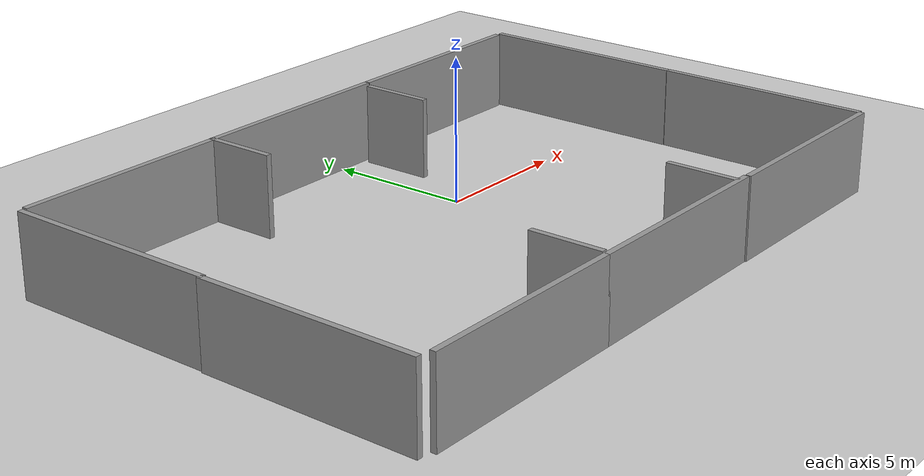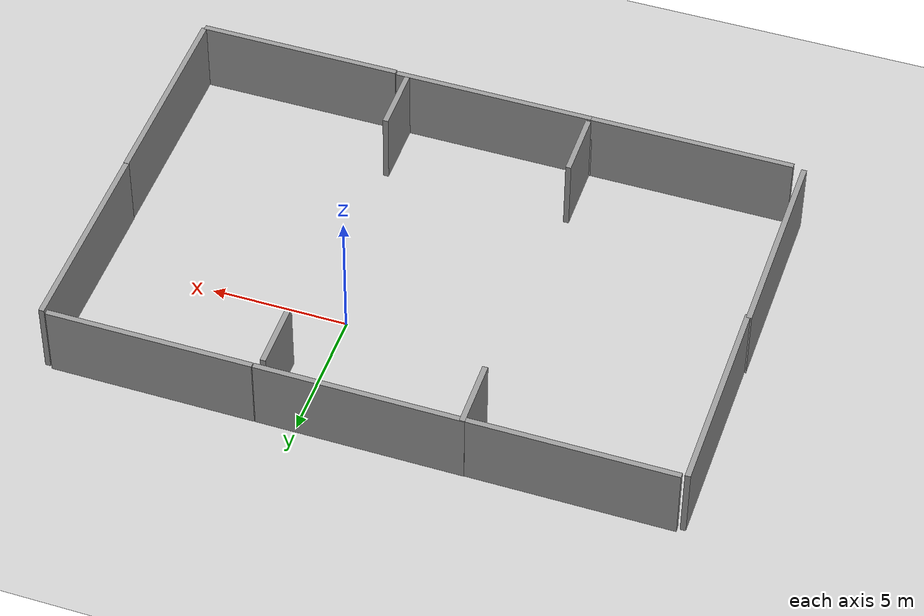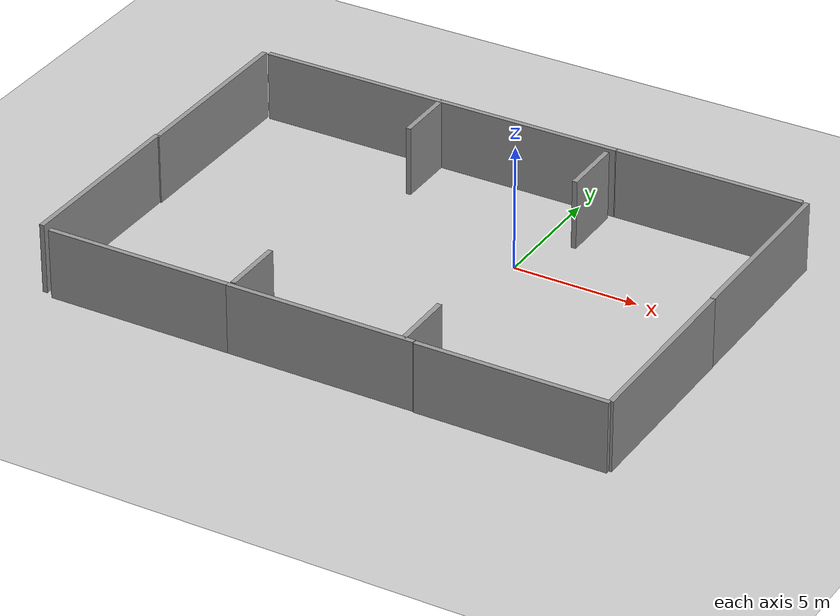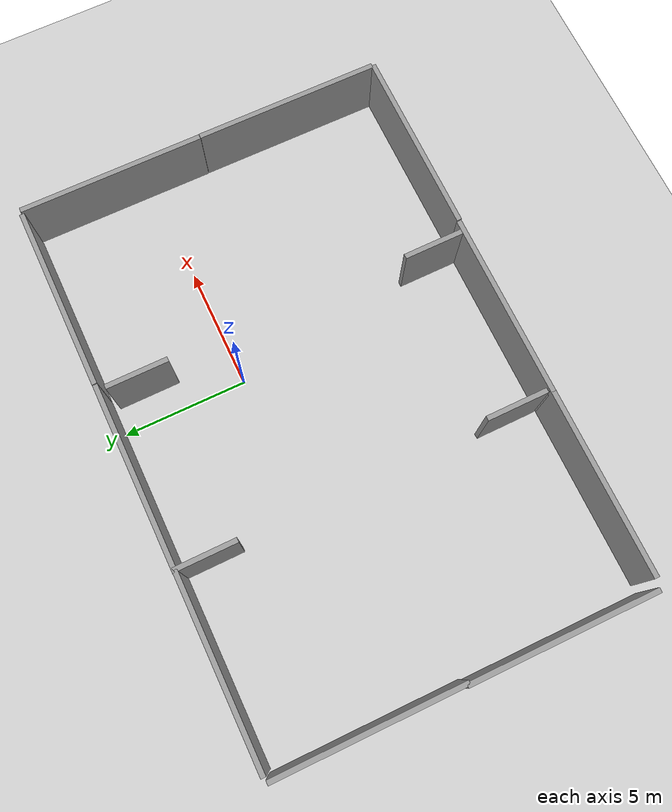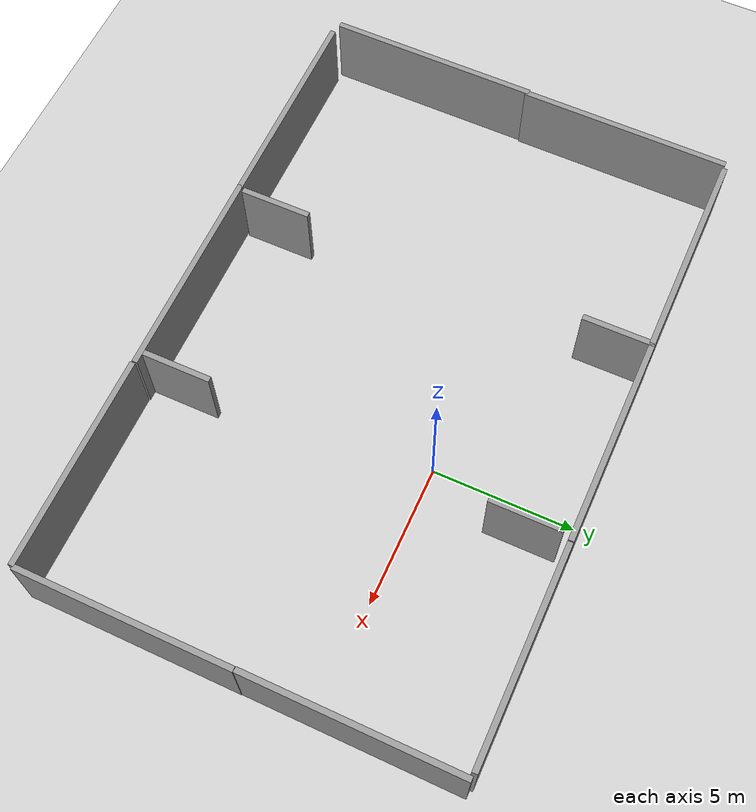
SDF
<sdf version="1.7">
 <world name="default">
  <light name="sun" type="directional">
   <pose>0 0 10 0 -0 0</pose>
   <diffuse>0.8 0.8 0.8 1</diffuse>
   <specular>0.2 0.2 0.2 1</specular>
   <attenuation>
    <range>1000</range>
    <constant>0.9</constant>
    <linear>0.01</linear>
    <quadratic>0.001</quadratic>
   </attenuation>
   <direction>-0.5 0.1 -0.9</direction>
   <spot><inner_angle>0</inner_angle><outer_angle>0</outer_angle><falloff>0</falloff></spot>
  </light>
  <model name="ground_plane">
   <static>1</static>
   <link name="link">
    <collision name="collision">
     <geometry><plane><normal>0 0 1</normal><size>100 100</size></plane></geometry>
     <surface><friction><ode><mu>100</mu><mu2>50</mu2></ode></friction></surface>
    </collision>
    <visual name="visual">
     <cast_shadows>0</cast_shadows>
     <geometry><plane><normal>0 0 1</normal><size>100 100</size></plane></geometry>
     <material>
      <script><uri>file://media/materials/scripts/gazebo.material</uri><name>Gazebo/Grey</name></script>
     </material>
    </visual>
   </link>
  </model>
  <gravity>0 0 -9.8</gravity>
  <magnetic_field>6e-06 2.3e-05 -4.2e-05</magnetic_field>
  <atmosphere type="adiabatic"/>
  <physics type="ode">
   <max_step_size>0.001</max_step_size>
   <real_time_factor>1</real_time_factor>
   <real_time_update_rate>1000</real_time_update_rate>
  </physics>
  <scene><ambient>0.4 0.4 0.4 1</ambient><background>0.7 0.7 0.7 1</background><shadows>1</shadows></scene>
  <spherical_coordinates>
   <surface_model>EARTH_WGS84</surface_model>
   <latitude_deg>0</latitude_deg>
   <longitude_deg>0</longitude_deg>
   <elevation>0</elevation>
   <heading_deg>0</heading_deg>
  </spherical_coordinates>
  <model name="grey_wall_0">
   <static>1</static>
   <link name="link">
    <pose>0 0 1.4 0 -0 0</pose>
    <collision name="collision"><geometry><box><size>7.5 0.2 2.8</size></box></geometry></collision>
    <visual name="visual">
     <cast_shadows>0</cast_shadows>
     <geometry><box><size>7.5 0.2 2.8</size></box></geometry>
     <material>
      <script>
       <uri>model://grey_wall/materials/scripts</uri>
       <uri>model://grey_wall/materials/textures</uri>
       <name>vrc/grey_wall</name>
      </script>
     </material>
    </visual>
   </link>
   <pose>5.20583 5.1106 0 0 -0 0</pose>
  </model>
  <model name="grey_wall">
   <static>1</static>
   <link name="link">
    <pose>0 0 1.4 0 -0 0</pose>
    <collision name="collision"><geometry><box><size>7.5 0.2 2.8</size></box></geometry></collision>
    <visual name="visual">
     <cast_shadows>0</cast_shadows>
     <geometry><box><size>7.5 0.2 2.8</size></box></geometry>
     <material>
      <script>
       <uri>model://grey_wall/materials/scripts</uri>
       <uri>model://grey_wall/materials/textures</uri>
       <name>vrc/grey_wall</name>
      </script>
     </material>
    </visual>
   </link>
   <pose>9.12729 1.36558 0 0 0 -1.57475</pose>
  </model>
  <model name="grey_wall_1">
   <static>1</static>
   <link name="link">
    <pose>0 0 1.4 0 -0 0</pose>
    <collision name="collision"><geometry><box><size>7.5 0.2 2.8</size></box></geometry></collision>
    <visual name="visual">
     <cast_shadows>0</cast_shadows>
     <geometry><box><size>7.5 0.2 2.8</size></box></geometry>
     <material>
      <script>
       <uri>model://grey_wall/materials/scripts</uri>
       <uri>model://grey_wall/materials/textures</uri>
       <name>vrc/grey_wall</name>
      </script>
     </material>
    </visual>
   </link>
   <pose>-2.32464 5.10838 0 0 -0 0</pose>
  </model>
  <model name="grey_wall_1_clone">
   <static>1</static>
   <link name="link">
    <pose>0 0 1.4 0 -0 0</pose>
    <collision name="collision"><geometry><box><size>7.5 0.2 2.8</size></box></geometry></collision>
    <visual name="visual">
     <cast_shadows>0</cast_shadows>
     <geometry><box><size>7.5 0.2 2.8</size></box></geometry>
     <material>
      <script>
       <uri>model://grey_wall/materials/scripts</uri>
       <uri>model://grey_wall/materials/textures</uri>
       <name>vrc/grey_wall</name>
      </script>
     </material>
    </visual>
   </link>
   <pose>-9.72989 5.09582 0 0 -0 0</pose>
  </model>
  <model name="grey_wall_clone">
   <static>1</static>
   <link name="link">
    <pose>0 0 1.4 0 -0 0</pose>
    <collision name="collision"><geometry><box><size>7.5 0.2 2.8</size></box></geometry></collision>
    <visual name="visual">
     <cast_shadows>0</cast_shadows>
     <geometry><box><size>7.5 0.2 2.8</size></box></geometry>
     <material>
      <script>
       <uri>model://grey_wall/materials/scripts</uri>
       <uri>model://grey_wall/materials/textures</uri>
       <name>vrc/grey_wall</name>
      </script>
     </material>
    </visual>
   </link>
   <pose>-13.6836 1.31312 0 0 0 -1.57475</pose>
  </model>
  <model name="grey_wall_clone_0">
   <static>1</static>
   <link name="link">
    <pose>0 0 1.4 0 -0 0</pose>
    <collision name="collision"><geometry><box><size>7.5 0.2 2.8</size></box></geometry></collision>
    <visual name="visual">
     <cast_shadows>0</cast_shadows>
     <geometry><box><size>7.5 0.2 2.8</size></box></geometry>
     <material>
      <script>
       <uri>model://grey_wall/materials/scripts</uri>
       <uri>model://grey_wall/materials/textures</uri>
       <name>vrc/grey_wall</name>
      </script>
     </material>
    </visual>
   </link>
   <pose>9.10984 -6.14538 0 0 0 -1.57475</pose>
  </model>
  <model name="grey_wall_clone_clone">
   <static>1</static>
   <link name="link">
    <pose>0 0 1.4 0 -0 0</pose>
    <collision name="collision"><geometry><box><size>7.5 0.2 2.8</size></box></geometry></collision>
    <visual name="visual">
     <cast_shadows>0</cast_shadows>
     <geometry><box><size>7.5 0.2 2.8</size></box></geometry>
     <material>
      <script>
       <uri>model://grey_wall/materials/scripts</uri>
       <uri>model://grey_wall/materials/textures</uri>
       <name>vrc/grey_wall</name>
      </script>
     </material>
    </visual>
   </link>
   <pose>-13.7676 -6.07073 0 0 0 -1.57475</pose>
  </model>
  <model name="grey_wall_0_clone">
   <static>1</static>
   <link name="link">
    <pose>0 0 1.4 0 -0 0</pose>
    <collision name="collision"><geometry><box><size>7.5 0.2 2.8</size></box></geometry></collision>
    <visual name="visual">
     <cast_shadows>0</cast_shadows>
     <geometry><box><size>7.5 0.2 2.8</size></box></geometry>
     <material>
      <script>
       <uri>model://grey_wall/materials/scripts</uri>
       <uri>model://grey_wall/materials/textures</uri>
       <name>vrc/grey_wall</name>
      </script>
     </material>
    </visual>
   </link>
   <pose>5.34046 -9.95206 0 0 -0 0</pose>
  </model>
  <model name="grey_wall_0_clone_0">
   <static>1</static>
   <link name="link">
    <pose>0 0 1.4 0 -0 0</pose>
    <collision name="collision"><geometry><box><size>7.5 0.2 2.8</size></box></geometry></collision>
    <visual name="visual">
     <cast_shadows>0</cast_shadows>
     <geometry><box><size>7.5 0.2 2.8</size></box></geometry>
     <material>
      <script>
       <uri>model://grey_wall/materials/scripts</uri>
       <uri>model://grey_wall/materials/textures</uri>
       <name>vrc/grey_wall</name>
      </script>
     </material>
    </visual>
   </link>
   <pose>-2.19826 -9.91474 0 0 -0 0</pose>
  </model>
  <model name="grey_wall_0_clone_1">
   <static>1</static>
   <link name="link">
    <pose>0 0 1.4 0 -0 0</pose>
    <collision name="collision"><geometry><box><size>7.5 0.2 2.8</size></box></geometry></collision>
    <visual name="visual">
     <cast_shadows>0</cast_shadows>
     <geometry><box><size>7.5 0.2 2.8</size></box></geometry>
     <material>
      <script>
       <uri>model://grey_wall/materials/scripts</uri>
       <uri>model://grey_wall/materials/textures</uri>
       <name>vrc/grey_wall</name>
      </script>
     </material>
    </visual>
   </link>
   <pose>-9.62502 -9.91474 0 0 -0 0</pose>
  </model>
  <model name="grey_wall_0_clone_2_clone">
   <link name="link">
    <pose>0 0 1.4 0 -0 0</pose>
    <inertial>
     <mass>1</mass>
     <inertia><ixx>1</ixx><ixy>0</ixy><ixz>0</ixz><iyy>1</iyy><iyz>0</iyz><izz>1</izz></inertia>
    </inertial>
    <visual name="visual">
     <cast_shadows>0</cast_shadows>
     <geometry><box><size>2.5 0.2 2.8</size></box></geometry>
     <material>
      <script>
       <uri>model://grey_wall/materials/scripts</uri>
       <uri>model://grey_wall/materials/textures</uri>
       <name>vrc/grey_wall</name>
      </script>
      <shader type="pixel"><normal_map>__default__</normal_map></shader>
      <ambient>1 1 1 1</ambient>
      <diffuse>1 1 1 1</diffuse>
      <specular>0 0 0 1</specular>
      <emissive>0 0 0 1</emissive>
     </material>
    </visual>
    <collision name="collision">
     <geometry><box><size>2.5 0.2 2.8</size></box></geometry>
     <surface>
      <friction>
       <ode><mu>1</mu><mu2>1</mu2><fdir1>0 0 0</fdir1><slip1>0</slip1><slip2>0</slip2></ode>
       <torsional>
        <coefficient>1</coefficient>
        <patch_radius>0</patch_radius>
        <surface_radius>0</surface_radius>
        <use_patch_radius>1</use_patch_radius>
        <ode><slip>0</slip></ode>
       </torsional>
      </friction>
      <bounce><restitution_coefficient>0</restitution_coefficient><threshold>1e+06</threshold></bounce>
      <contact>
       <collide_without_contact>0</collide_without_contact>
       <collide_without_contact_bitmask>1</collide_without_contact_bitmask>
       <collide_bitmask>1</collide_bitmask>
       <ode>
        <soft_cfm>0</soft_cfm>
        <soft_erp>0.2</soft_erp>
        <kp>1e+13</kp>
        <kd>1</kd>
        <max_vel>0.01</max_vel>
        <min_depth>0</min_depth>
       </ode>
       <bullet>
        <split_impulse>1</split_impulse>
        <split_impulse_penetration_threshold>-0.01</split_impulse_penetration_threshold>
        <soft_cfm>0</soft_cfm>
        <soft_erp>0.2</soft_erp>
        <kp>1e+13</kp>
        <kd>1</kd>
       </bullet>
      </contact>
     </surface>
    </collision>
   </link>
   <static>1</static>
   <pose>-5.81583 -8.49873 0 0 0 -1.56766</pose>
  </model>
  <model name="grey_wall_0_clone_2_clone_clone">
   <link name="link">
    <pose>0 0 1.4 0 -0 0</pose>
    <inertial>
     <mass>1</mass>
     <inertia><ixx>1</ixx><ixy>0</ixy><ixz>0</ixz><iyy>1</iyy><iyz>0</iyz><izz>1</izz></inertia>
    </inertial>
    <visual name="visual">
     <cast_shadows>0</cast_shadows>
     <geometry><box><size>2.5 0.2 2.8</size></box></geometry>
     <material>
      <script>
       <uri>model://grey_wall/materials/scripts</uri>
       <uri>model://grey_wall/materials/textures</uri>
       <name>vrc/grey_wall</name>
      </script>
      <shader type="pixel"><normal_map>__default__</normal_map></shader>
      <ambient>1 1 1 1</ambient>
      <diffuse>1 1 1 1</diffuse>
      <specular>0 0 0 1</specular>
      <emissive>0 0 0 1</emissive>
     </material>
    </visual>
    <collision name="collision">
     <geometry><box><size>2.5 0.2 2.8</size></box></geometry>
     <surface>
      <friction>
       <ode><mu>1</mu><mu2>1</mu2><fdir1>0 0 0</fdir1><slip1>0</slip1><slip2>0</slip2></ode>
       <torsional>
        <coefficient>1</coefficient>
        <patch_radius>0</patch_radius>
        <surface_radius>0</surface_radius>
        <use_patch_radius>1</use_patch_radius>
        <ode><slip>0</slip></ode>
       </torsional>
      </friction>
      <bounce><restitution_coefficient>0</restitution_coefficient><threshold>1e+06</threshold></bounce>
      <contact>
       <collide_without_contact>0</collide_without_contact>
       <collide_without_contact_bitmask>1</collide_without_contact_bitmask>
       <collide_bitmask>1</collide_bitmask>
       <ode>
        <soft_cfm>0</soft_cfm>
        <soft_erp>0.2</soft_erp>
        <kp>1e+13</kp>
        <kd>1</kd>
        <max_vel>0.01</max_vel>
        <min_depth>0</min_depth>
       </ode>
       <bullet>
        <split_impulse>1</split_impulse>
        <split_impulse_penetration_threshold>-0.01</split_impulse_penetration_threshold>
        <soft_cfm>0</soft_cfm>
        <soft_erp>0.2</soft_erp>
        <kp>1e+13</kp>
        <kd>1</kd>
       </bullet>
      </contact>
     </surface>
    </collision>
   </link>
   <static>1</static>
   <pose>1.11816 -8.64769 0 0 0 -1.56766</pose>
  </model>
  <model name="grey_wall_0_clone_2_clone_clone_clone">
   <link name="link">
    <pose>0 0 1.4 0 -0 0</pose>
    <inertial>
     <mass>1</mass>
     <inertia><ixx>1</ixx><ixy>0</ixy><ixz>0</ixz><iyy>1</iyy><iyz>0</iyz><izz>1</izz></inertia>
    </inertial>
    <visual name="visual">
     <cast_shadows>0</cast_shadows>
     <geometry><box><size>2.5 0.2 2.8</size></box></geometry>
     <material>
      <script>
       <uri>model://grey_wall/materials/scripts</uri>
       <uri>model://grey_wall/materials/textures</uri>
       <name>vrc/grey_wall</name>
      </script>
      <shader type="pixel"><normal_map>__default__</normal_map></shader>
      <ambient>1 1 1 1</ambient>
      <diffuse>1 1 1 1</diffuse>
      <specular>0 0 0 1</specular>
      <emissive>0 0 0 1</emissive>
     </material>
    </visual>
    <collision name="collision">
     <geometry><box><size>2.5 0.2 2.8</size></box></geometry>
     <surface>
      <friction>
       <ode><mu>1</mu><mu2>1</mu2><fdir1>0 0 0</fdir1><slip1>0</slip1><slip2>0</slip2></ode>
       <torsional>
        <coefficient>1</coefficient>
        <patch_radius>0</patch_radius>
        <surface_radius>0</surface_radius>
        <use_patch_radius>1</use_patch_radius>
        <ode><slip>0</slip></ode>
       </torsional>
      </friction>
      <bounce><restitution_coefficient>0</restitution_coefficient><threshold>1e+06</threshold></bounce>
      <contact>
       <collide_without_contact>0</collide_without_contact>
       <collide_without_contact_bitmask>1</collide_without_contact_bitmask>
       <collide_bitmask>1</collide_bitmask>
       <ode>
        <soft_cfm>0</soft_cfm>
        <soft_erp>0.2</soft_erp>
        <kp>1e+13</kp>
        <kd>1</kd>
        <max_vel>0.01</max_vel>
        <min_depth>0</min_depth>
       </ode>
       <bullet>
        <split_impulse>1</split_impulse>
        <split_impulse_penetration_threshold>-0.01</split_impulse_penetration_threshold>
        <soft_cfm>0</soft_cfm>
        <soft_erp>0.2</soft_erp>
        <kp>1e+13</kp>
        <kd>1</kd>
       </bullet>
      </contact>
     </surface>
    </collision>
   </link>
   <static>1</static>
   <pose>1.1928 3.5561 0 0 0 -1.56766</pose>
  </model>
  <model name="grey_wall_0_clone_2_clone_clone_clone_0">
   <link name="link">
    <pose>0 0 1.4 0 -0 0</pose>
    <inertial>
     <mass>1</mass>
     <inertia><ixx>1</ixx><ixy>0</ixy><ixz>0</ixz><iyy>1</iyy><iyz>0</iyz><izz>1</izz></inertia>
    </inertial>
    <visual name="visual">
     <cast_shadows>0</cast_shadows>
     <geometry><box><size>2.5 0.2 2.8</size></box></geometry>
     <material>
      <script>
       <uri>model://grey_wall/materials/scripts</uri>
       <uri>model://grey_wall/materials/textures</uri>
       <name>vrc/grey_wall</name>
      </script>
      <shader type="pixel"><normal_map>__default__</normal_map></shader>
      <ambient>1 1 1 1</ambient>
      <diffuse>1 1 1 1</diffuse>
      <specular>0 0 0 1</specular>
      <emissive>0 0 0 1</emissive>
     </material>
    </visual>
    <collision name="collision">
     <geometry><box><size>2.5 0.2 2.8</size></box></geometry>
     <surface>
      <friction>
       <ode><mu>1</mu><mu2>1</mu2><fdir1>0 0 0</fdir1><slip1>0</slip1><slip2>0</slip2></ode>
       <torsional>
        <coefficient>1</coefficient>
        <patch_radius>0</patch_radius>
        <surface_radius>0</surface_radius>
        <use_patch_radius>1</use_patch_radius>
        <ode><slip>0</slip></ode>
       </torsional>
      </friction>
      <bounce><restitution_coefficient>0</restitution_coefficient><threshold>1e+06</threshold></bounce>
      <contact>
       <collide_without_contact>0</collide_without_contact>
       <collide_without_contact_bitmask>1</collide_without_contact_bitmask>
       <collide_bitmask>1</collide_bitmask>
       <ode>
        <soft_cfm>0</soft_cfm>
        <soft_erp>0.2</soft_erp>
        <kp>1e+13</kp>
        <kd>1</kd>
        <max_vel>0.01</max_vel>
        <min_depth>0</min_depth>
       </ode>
       <bullet>
        <split_impulse>1</split_impulse>
        <split_impulse_penetration_threshold>-0.01</split_impulse_penetration_threshold>
        <soft_cfm>0</soft_cfm>
        <soft_erp>0.2</soft_erp>
        <kp>1e+13</kp>
        <kd>1</kd>
       </bullet>
      </contact>
     </surface>
    </collision>
   </link>
   <static>1</static>
   <pose>-5.97272 3.9293 0 0 0 -1.56766</pose>
  </model>
 </world>
</sdf>
